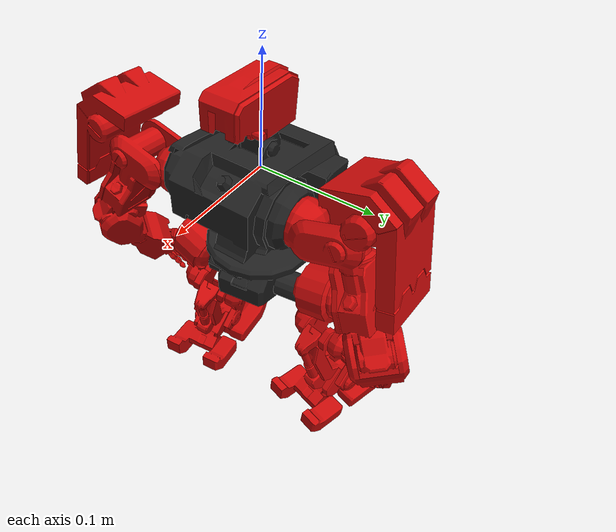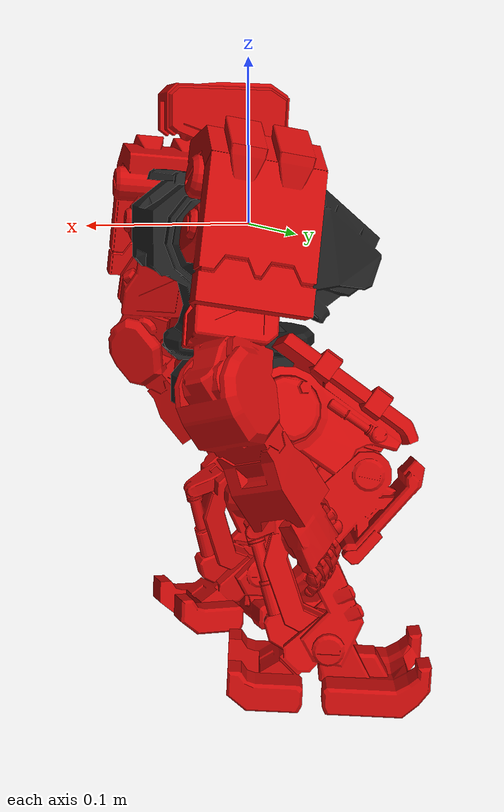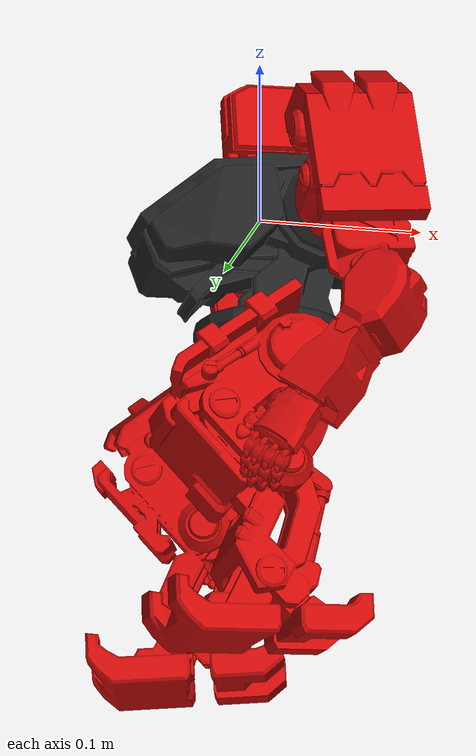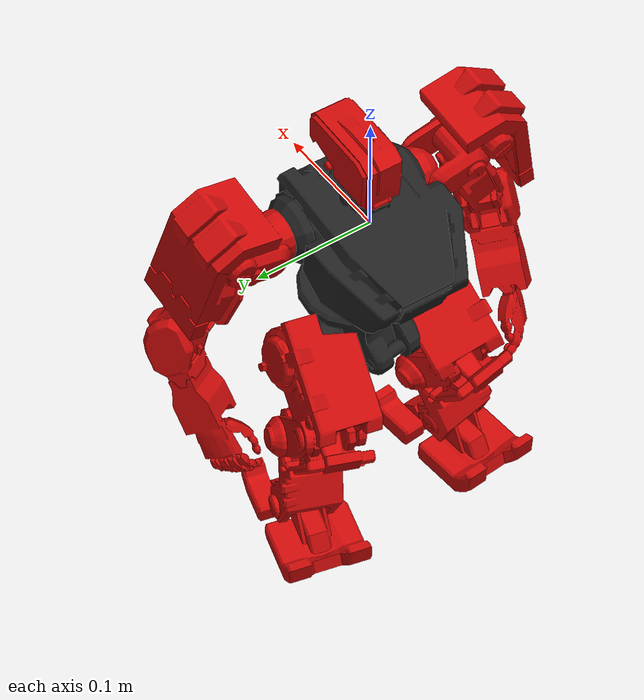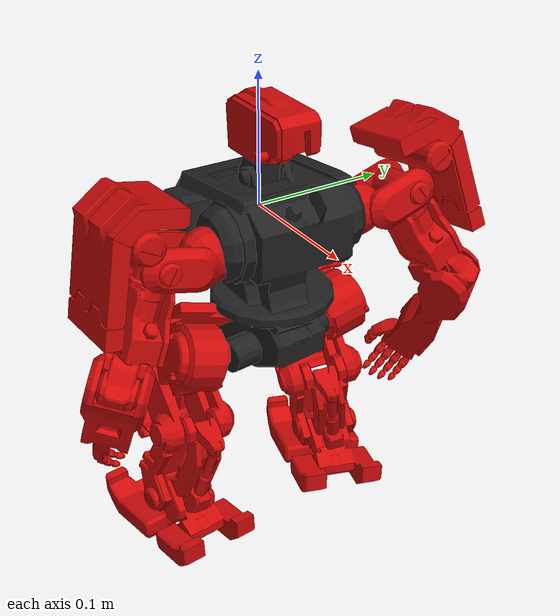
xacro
<?xml version="1.0"?>
<robot xmlns:xacro="https://www.ros.org/wiki/xacro" name="bastion" version="1.0">

    <!-- TODO: Write comments for sections and each link and joint -->

    <link name="base_link">
        <collision name="base_collision">
            <origin rpy="0.00000 0.00000 -0.07693" xyz="-0.00000 -0.00000 -0.01116"/>
            <geometry>
                <mesh filename="package://bastion_description/models/bastion_v1/meshes/collisions/base.stl" scale="1.00000 1.00000 1.00000"/>
            </geometry>
        </collision>
        <inertial>
            <inertia ixx="0.00033" ixy="0.00001" ixz="-0.00002" iyy="0.00045" iyz="0.00000" izz="0.00049"/>
            <origin rpy="0.00000 0.00000 0.00000" xyz="-0.00000 -0.00001 -0.01117"/>
            <mass value="0.30000"/>
        </inertial>
        <visual name="base">
            <origin rpy="0.00000 0.00000 -0.00000" xyz="-0.00000 -0.00000 -0.01045"/>

            <geometry>
                <mesh filename="package://bastion_description/models/bastion_v1/meshes/visuals/base.dae" scale="1.00000 1.00000 1.00000"/>
            </geometry>
        </visual>
    </link>

    <link name="head_link">
        <collision name="head_collision">
            <origin rpy="0.00000 0.00000 -0.00085" xyz="-0.00000 -0.00000 0.00000"/>
            <geometry>
                <mesh filename="package://bastion_description/models/bastion_v1/meshes/collisions/head.stl" scale="1.00000 1.00000 1.00000"/>
            </geometry>
        </collision>
        <inertial>
            <inertia ixx="0.00004" ixy="0.00000" ixz="-0.00001" iyy="0.00007" iyz="0.00000" izz="0.00005"/>
            <origin rpy="0.00000 0.00000 0.00000" xyz="0.00539 -0.00030 0.02003"/>
            <mass value="0.10000"/>
        </inertial>
        <visual name="head">
            <origin rpy="0.00000 0.00000 0.00000" xyz="-0.00000 -0.00000 0.00000"/>

            <geometry>
                <mesh filename="package://bastion_description/models/bastion_v1/meshes/visuals/head.dae" scale="1.00000 1.00000 1.00000"/>
            </geometry>
        </visual>
    </link>

    <link name="left_arm_link">
        <collision name="left_arm_collision">
            <origin rpy="1.55502 -0.22218 -0.28790" xyz="-0.00000 0.00000 0.00000"/>
            <geometry>
                <mesh filename="package://bastion_description/models/bastion_v1/meshes/collisions/left_arm.stl" scale="1.00000 1.00000 1.00000"/>
            </geometry>
        </collision>
        <inertial>
            <inertia ixx="0.00314" ixy="0.00009" ixz="-0.00109" iyy="0.00351" iyz="0.00030" izz="0.00062"/>
            <origin rpy="0.00000 0.00000 0.00000" xyz="-0.01016 0.02891 0.05804"/>
            <mass value="0.30000"/>
        </inertial>
        <visual name="left_arm">
            <origin rpy="1.57035 -0.23737 -0.27914" xyz="-0.00000 0.00000 0.00000"/>

            <geometry>
                <mesh filename="package://bastion_description/models/bastion_v1/meshes/visuals/left_arm.dae" scale="1.00000 1.00000 1.00000"/>
            </geometry>
        </visual>
    </link>

    <link name="left_leg_link">
        <collision name="left_leg_collision">
            <origin rpy="1.55589 -0.07879 -0.17754" xyz="0.00124 -0.00591 0.00049"/>
            <geometry>
                <mesh filename="package://bastion_description/models/bastion_v1/meshes/collisions/left_leg.stl" scale="1.00000 1.00000 1.00000"/>
            </geometry>
        </collision>
        <inertial>
            <inertia ixx="0.00110" ixy="0.00001" ixz="-0.00004" iyy="0.00118" iyz="0.00007" izz="0.00022"/>
            <origin rpy="0.00000 0.00000 0.00000" xyz="-0.02113 0.06956 0.01913"/>
            <mass value="0.30000"/>
        </inertial>
        <visual name="left_leg">
            <origin rpy="1.57622 -0.09060 -0.21502" xyz="0.00124 -0.00591 0.00049"/>

            <geometry>
                <mesh filename="package://bastion_description/models/bastion_v1/meshes/visuals/left_leg.dae" scale="1.00000 1.00000 1.00000"/>
            </geometry>
        </visual>
    </link>

    <link name="right_arm_link">
        <collision name="right_arm_collision.000.001">
            <origin rpy="-1.54602 -0.27879 0.93631" xyz="-0.00000 -0.00000 -0.00000"/>
            <geometry>
                <mesh filename="package://bastion_description/models/bastion_v1/meshes/collisions/right_arm.stl" scale="1.00000 1.00000 1.00000"/>
            </geometry>
        </collision>
        <inertial>
            <inertia ixx="0.00336" ixy="-0.00002" ixz="-0.00077" iyy="0.00353" iyz="-0.00014" izz="0.00038"/>
            <origin rpy="0.00000 0.00000 0.00000" xyz="0.00934 -0.03194 0.05657"/>
            <mass value="0.30000"/>
        </inertial>
        <visual name="right_arm">
            <origin rpy="-1.49756 -0.20450 0.89827" xyz="-0.00000 -0.00000 0.00000"/>

            <geometry>
                <mesh filename="package://bastion_description/models/bastion_v1/meshes/visuals/right_arm.dae" scale="1.00000 1.00000 1.00000"/>
            </geometry>
        </visual>

    </link>

    <link name="right_leg_link">
        <collision name="right leg_collision">
            <origin rpy="-1.64482 -0.10708 0.19494" xyz="0.00042 0.00026 -0.00554"/>
            <geometry>
                <mesh filename="package://bastion_description/models/bastion_v1/meshes/collisions/right_leg.stl" scale="1.00000 1.00000 1.00000"/>
            </geometry>
        </collision>
        <inertial>
            <inertia ixx="0.00110" ixy="-0.00001" ixz="-0.00005" iyy="0.00116" iyz="-0.00015" izz="0.00024"/>
            <origin rpy="0.00000 0.00000 0.00000" xyz="-0.02220 -0.07367 0.01821"/>
            <mass value="0.30000"/>
        </inertial>
        <visual name="right leg">
            <origin rpy="-1.57746 -0.07125 0.20445" xyz="0.00080 0.00010 -0.00875"/>

            <geometry>
                <mesh filename="package://bastion_description/models/bastion_v1/meshes/visuals/right_leg.dae" scale="1.00000 1.00000 1.00000"/>
            </geometry>
        </visual>
    </link>

    <link name="waist_link">
        <collision name="waist_collision">
            <origin rpy="0.00000 0.00000 0.00000" xyz="0.00000 0.00000 0.00000"/>
            <geometry>
                <mesh filename="package://bastion_description/models/bastion_v1/meshes/collisions/waist.stl" scale="1.00000 1.00000 1.00000"/>
            </geometry>
        </collision>
        <inertial>
            <inertia ixx="0.00013" ixy="0.00000" ixz="-0.00003" iyy="0.00017" iyz="0.00000" izz="0.00017"/>
            <origin rpy="0.00000 0.00000 0.00000" xyz="-0.00090 -0.00101 -0.02636"/>
            <mass value="0.20000"/>
        </inertial>
        <visual name="waist">
            <origin rpy="0.00000 0.00000 0.13859" xyz="0.00000 0.00000 0.00000"/>

            <geometry>
                <mesh filename="package://bastion_description/models/bastion_v1/meshes/visuals/waist.dae" scale="1.00000 1.00000 1.00000"/>
            </geometry>
        </visual>
    </link>

    <joint name="head_link_joint" type="revolute">
        <limit lower="-1.57000" upper="1.57000" effort="0.00000" velocity="0.00000"/>
        <origin rpy="0.00000 0.00000 -0.01023" xyz="0.01007 0.00197 0.03947"/>
        <parent link="base_link"/>
        <child link="head_link"/>
        <axis xyz="0.00000 0.00000 1.00000"/>
    </joint>

    <joint name="left_arm_link_joint" type="revolute">
        <limit lower="-1.57000" upper="1.57000" effort="0.00000" velocity="0.00000"/>
        <origin rpy="-1.53929 0.10637 -0.23127" xyz="0.03229 0.06031 -0.00517"/>
        <parent link="base_link"/>
        <child link="left_arm_link"/>
        <axis xyz="0.00000 0.00000 1.00000"/>
    </joint>

    <joint name="left_leg_link_joint" type="revolute">
        <limit lower="-3.14000" upper="3.14000" effort="0.00000" velocity="0.00000"/>
        <origin rpy="-1.57001 0.14661 -0.13414" xyz="-0.00902 0.04323 -0.04967"/>
        <parent link="waist_link"/>
        <child link="left_leg_link"/>
        <axis xyz="0.00000 0.00000 1.00000"/>
    </joint>

    <joint name="right_arm_link_joint" type="revolute">
        <limit lower="-1.57000" upper="1.57000" effort="0.00000" velocity="0.00000"/>
        <origin rpy="1.52711 0.81496 0.14808" xyz="0.03137 -0.06034 -0.01017"/>
        <parent link="base_link"/>
        <child link="right_arm_link"/>
        <axis xyz="0.00000 0.00000 -1.00000"/>
    </joint>

    <joint name="right_leg_link_joint" type="revolute">
        <limit lower="-3.14000" upper="3.14000" effort="0.00000" velocity="0.00000"/>
        <origin rpy="1.56485 0.13082 -0.03626" xyz="0.00533 -0.05577 -0.04575"/>
        <parent link="waist_link"/>
        <child link="right_leg_link"/>
        <axis xyz="0.00000 0.00000 -1.00000"/>
    </joint>

    <joint name="waist_link_joint" type="revolute">
        <limit lower="-0.26200" upper="0.26000" effort="0.00000" velocity="0.00000"/>
        <origin rpy="-0.00199 0.00947 -0.00125" xyz="0.00492 0.00604 -0.06456"/>
        <parent link="base_link"/>
        <child link="waist_link"/>
        <axis xyz="0.00000 0.00000 1.00000"/>
    </joint>

</robot>
